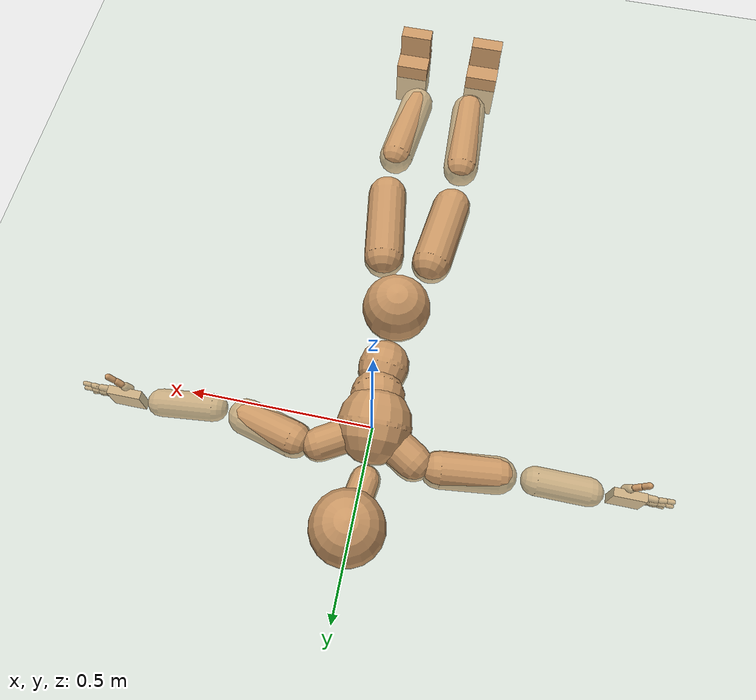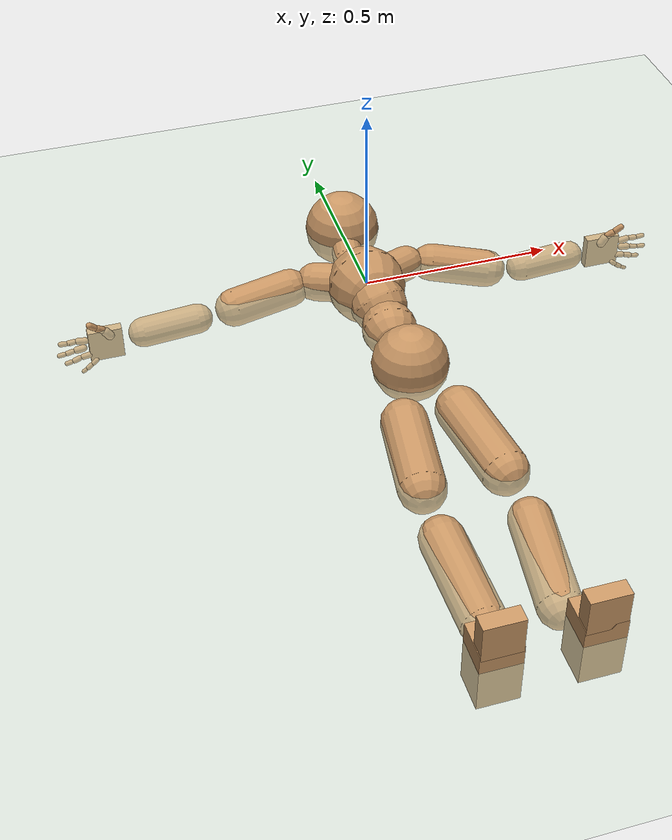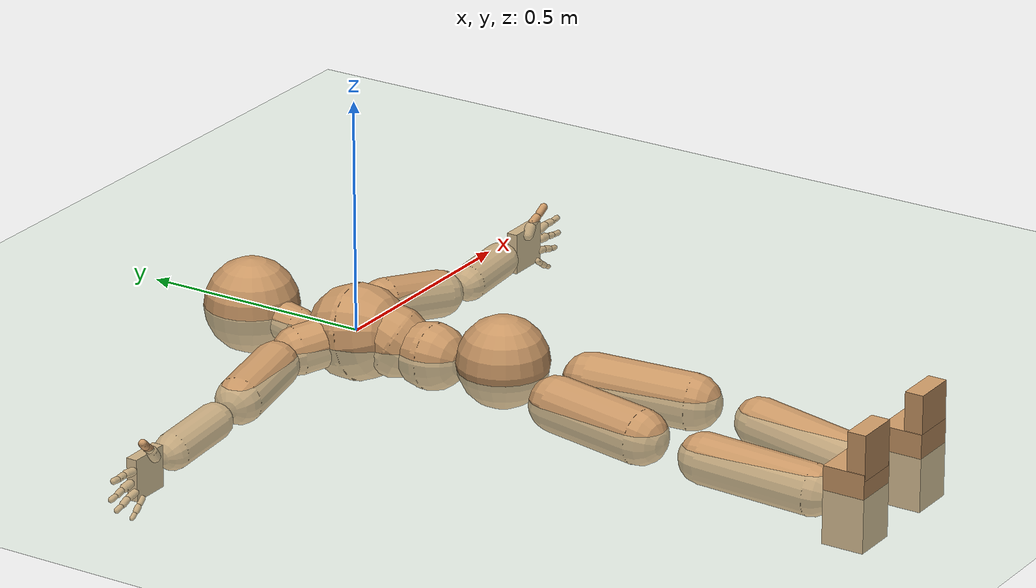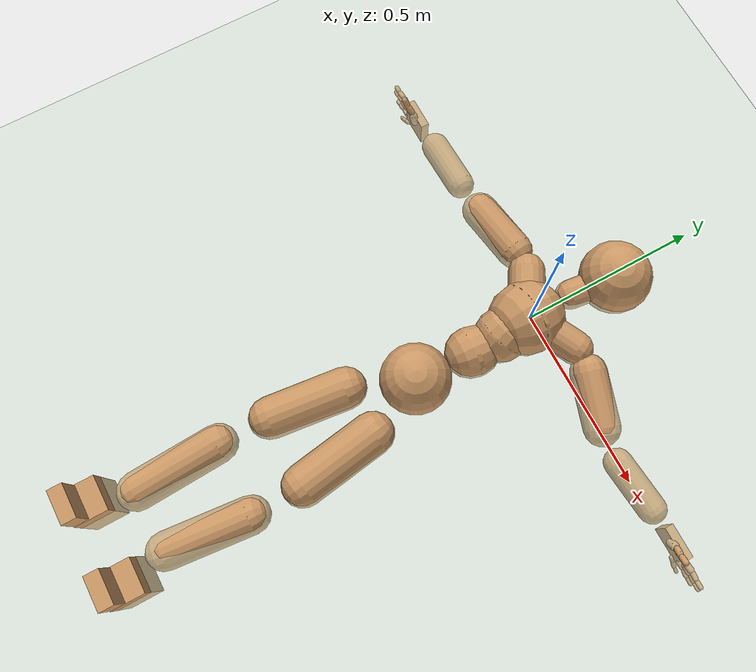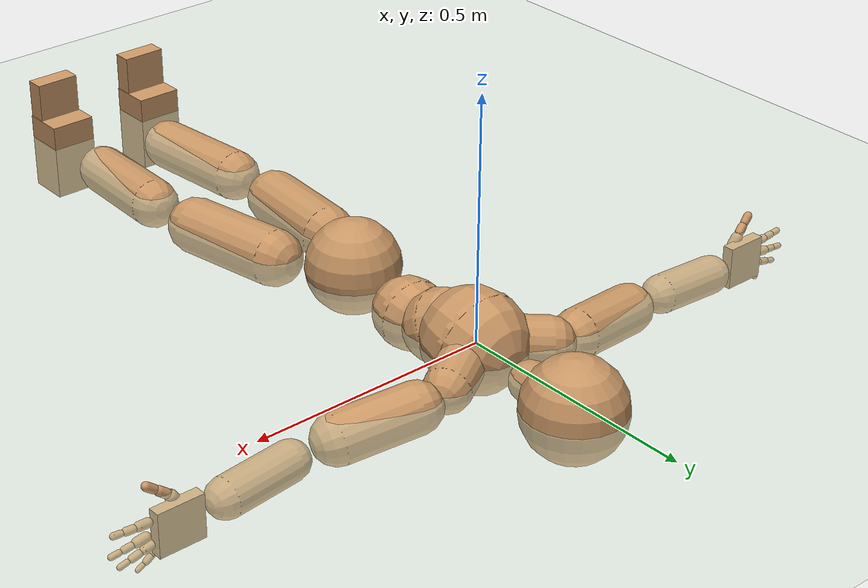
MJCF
<mujoco model="humanoid">
  <compiler coordinate="local"/>
  <default>
    <joint damping="0.0" armature="0.01" stiffness="0.0" limited="true"/>
    <geom conaffinity="1" condim="3" contype="7" margin="0.001" rgba="0.8 0.6 .4 1"/>
  </default>
  <asset>
    <texture type="skybox" builtin="gradient" rgb1=".4 .5 .6" rgb2="0 0 0" width="100" height="100"/>
    <texture builtin="flat" height="1278" mark="cross" markrgb="1 1 1" name="texgeom" random="0.01" rgb1="0.8 0.6 0.4" rgb2="0.8 0.6 0.4" type="cube" width="127"/>
    <texture builtin="checker" height="100" name="texplane" rgb1="0 0 0" rgb2="0.8 0.8 0.8" type="2d" width="100"/>
    <material name="MatPlane" reflectance="0.5" shininess="1" specular="1" texrepeat="60 60" texture="texplane"/>
    <material name="geom" texture="texgeom" texuniform="true"/>
  </asset>
  <worldbody>
    <light cutoff="100" diffuse="1 1 1" dir="-0 0 -1.3" directional="true" exponent="1" pos="0 0 1.3" specular=".1 .1 .1"/>
    <geom conaffinity="1" condim="3" name="floor" pos="0 0 0" rgba="0.8 0.9 0.8 1" size="100 100 .2" type="plane" material="MatPlane"/>
    <body name="Pelvis" pos="0.0031 -0.3543 0.0121">
      <freejoint name="Pelvis"/>
      <geom type="sphere" contype="1" conaffinity="1" density="4629.6296296296305" size="0.0968" pos="0.0000 0.0000 0.0000" name="Pelvis"/>
      <body name="L_Hip" pos="0.0581 -0.092 -0.0259">
        <joint name="L_Hip_x" type="hinge" pos="0 0 0" axis="1 0 0" user="250 2.5 1 500 10 2" armature="0.01" range="-90.0000 90.0000" damping="0" stiffness="0"/>
        <joint name="L_Hip_y" type="hinge" pos="0 0 0" axis="0 1 0" user="250 2.5 1 500 10 2" armature="0.01" range="-90.0000 90.0000" damping="0" stiffness="0"/>
        <joint name="L_Hip_z" type="hinge" pos="0 0 0" axis="0 0 1" user="250 2.5 1 500 10 2" armature="0.01" range="-90.0000 90.0000" damping="0" stiffness="0"/>
        <geom type="capsule" contype="1" conaffinity="1" density="2040.816327" fromto="0.0109 -0.0736 -0.0023 0.0434 -0.2945 -0.0091" size="0.059" name="L_Hip"/>
        <body name="L_Knee" pos="0.0543 -0.3681 -0.0114">
          <joint name="L_Knee_x" type="hinge" pos="0 0 0" axis="1 0 0" user="250 2.5 1 500 10 2" armature="0.01" range="-180.0000 180.0000" damping="0" stiffness="0"/>
          <joint name="L_Knee_y" type="hinge" pos="0 0 0" axis="0 1 0" user="250 2.5 1 500 10 2" armature="0.01" range="-5.6250 5.6250" damping="0" stiffness="0"/>
          <joint name="L_Knee_z" type="hinge" pos="0 0 0" axis="0 0 1" user="250 2.5 1 500 10 2" armature="0.01" range="-5.6250 5.6250" damping="0" stiffness="0"/>
          <geom type="capsule" contype="1" conaffinity="1" density="1234.567901" fromto="-0.0086 -0.0785 -0.0064 -0.0342 -0.3139 -0.0254" size="0.0519" name="L_Knee"/>
          <body name="L_Ankle" pos="-0.0428 -0.3924 -0.0318">
            <joint name="L_Ankle_x" type="hinge" pos="0 0 0" axis="1 0 0" user="150 2.5 1 500 10 2" armature="0.01" range="-90.0000 90.0000" damping="0" stiffness="0"/>
            <joint name="L_Ankle_y" type="hinge" pos="0 0 0" axis="0 1 0" user="150 2.5 1 500 10 2" armature="0.01" range="-90.0000 90.0000" damping="0" stiffness="0"/>
            <joint name="L_Ankle_z" type="hinge" pos="0 0 0" axis="0 0 1" user="150 2.5 1 500 10 2" armature="0.01" range="-90.0000 90.0000" damping="0" stiffness="0"/>
            <geom type="box" density="444.001849" pos="0.0401 -0.0280 0.0231" size="0.0487 0.0454 0.083" quat="1.0000 0.0000 0.0000 0.0000" name="L_Ankle"/>
            <body name="L_Toe" pos="0.0466 -0.0567 0.1152">
              <joint name="L_Toe_x" type="hinge" pos="0 0 0" axis="1 0 0" user="150 1 1 500 1 1" armature="0.01" range="-90.0000 90.0000" damping="0" stiffness="0"/>
              <joint name="L_Toe_y" type="hinge" pos="0 0 0" axis="0 1 0" user="150 1 1 500 1 1" armature="0.01" range="-45.0000 45.0000" damping="0" stiffness="0"/>
              <joint name="L_Toe_z" type="hinge" pos="0 0 0" axis="0 0 1" user="150 1 1 500 1 1" armature="0.01" range="-45.0000 45.0000" damping="0" stiffness="0"/>
              <geom type="box" density="421.181777" pos="-0.0065 0.0033 0.0250" size="0.0469 0.02 0.0483" quat="1.0000 0.0000 0.0000 0.0000" name="L_Toe"/>
            </body>
          </body>
        </body>
      </body>
      <body name="R_Hip" pos="-0.063 -0.1025 -0.0219">
        <joint name="R_Hip_x" type="hinge" pos="0 0 0" axis="1 0 0" user="250 2.5 1 500 10 2" armature="0.01" range="-90.0000 90.0000" damping="0" stiffness="0"/>
        <joint name="R_Hip_y" type="hinge" pos="0 0 0" axis="0 1 0" user="250 2.5 1 500 10 2" armature="0.01" range="-90.0000 90.0000" damping="0" stiffness="0"/>
        <joint name="R_Hip_z" type="hinge" pos="0 0 0" axis="0 0 1" user="250 2.5 1 500 10 2" armature="0.01" range="-90.0000 90.0000" damping="0" stiffness="0"/>
        <geom type="capsule" contype="1" conaffinity="1" density="2040.816327" fromto="-0.0088 -0.0705 -0.0036 -0.0352 -0.2821 -0.0145" size="0.0582" name="R_Hip"/>
        <body name="R_Knee" pos="-0.044 -0.3526 -0.0181">
          <joint name="R_Knee_x" type="hinge" pos="0 0 0" axis="1 0 0" user="250 2.5 1 500 10 2" armature="0.01" range="-180.0000 180.0000" damping="0" stiffness="0"/>
          <joint name="R_Knee_y" type="hinge" pos="0 0 0" axis="0 1 0" user="250 2.5 1 500 10 2" armature="0.01" range="-5.6250 5.6250" damping="0" stiffness="0"/>
          <joint name="R_Knee_z" type="hinge" pos="0 0 0" axis="0 0 1" user="250 2.5 1 500 10 2" armature="0.01" range="-5.6250 5.6250" damping="0" stiffness="0"/>
          <geom type="capsule" contype="1" conaffinity="1" density="1234.567901" fromto="0.0030 -0.0800 -0.0040 0.0122 -0.3198 -0.0161" size="0.0536" name="R_Knee"/>
          <body name="R_Ankle" pos="0.0152 -0.3998 -0.0202">
            <joint name="R_Ankle_x" type="hinge" pos="0 0 0" axis="1 0 0" user="150 1 1 500 10 2" armature="0.01" range="-90.0000 90.0000" damping="0" stiffness="0"/>
            <joint name="R_Ankle_y" type="hinge" pos="0 0 0" axis="0 1 0" user="150 1 1 500 10 2" armature="0.01" range="-90.0000 90.0000" damping="0" stiffness="0"/>
            <joint name="R_Ankle_z" type="hinge" pos="0 0 0" axis="0 0 1" user="150 1 1 500 10 2" armature="0.01" range="-90.0000 90.0000" damping="0" stiffness="0"/>
            <geom type="box" density="443.990292" pos="-0.0240 -0.0256 0.0143" size="0.0487 0.0454 0.083" quat="1.0000 0.0000 0.0000 0.0000" name="R_Ankle"/>
            <body name="R_Toe" pos="-0.0383 -0.0572 0.116">
              <joint name="R_Toe_x" type="hinge" pos="0 0 0" axis="1 0 0" user="150 1 1 500 1 1" armature="0.01" range="-90.0000 90.0000" damping="0" stiffness="0"/>
              <joint name="R_Toe_y" type="hinge" pos="0 0 0" axis="0 1 0" user="150 1 1 500 1 1" armature="0.01" range="-45.0000 45.0000" damping="0" stiffness="0"/>
              <joint name="R_Toe_z" type="hinge" pos="0 0 0" axis="0 0 1" user="150 1 1 500 1 1" armature="0.01" range="-45.0000 45.0000" damping="0" stiffness="0"/>
              <geom type="box" density="421.188207" pos="0.0143 0.0061 0.0154" size="0.0469 0.02 0.0483" quat="1.0000 0.0000 0.0000 0.0000" name="R_Toe"/>
            </body>
          </body>
        </body>
      </body>
      <body name="Torso" pos="-0.0025 0.1078 -0.0263">
        <joint name="Torso_x" type="hinge" pos="0 0 0" axis="1 0 0" user="500 5 1 500 10 2" armature="0.01" range="-60.0000 60.0000" damping="0" stiffness="0"/>
        <joint name="Torso_y" type="hinge" pos="0 0 0" axis="0 1 0" user="500 5 1 500 10 2" armature="0.01" range="-60.0000 60.0000" damping="0" stiffness="0"/>
        <joint name="Torso_z" type="hinge" pos="0 0 0" axis="0 0 1" user="500 5 1 500 10 2" armature="0.01" range="-60.0000 60.0000" damping="0" stiffness="0"/>
        <geom type="capsule" contype="1" conaffinity="1" density="2040.816327" fromto="0.0042 0.0588 -0.0019 0.0051 0.0719 -0.0023" size="0.0704" name="Torso"/>
        <body name="Spine" pos="0.0093 0.1307 -0.0042">
          <joint name="Spine_x" type="hinge" pos="0 0 0" axis="1 0 0" user="500 5 1 500 10 2" armature="0.01" range="-60.0000 60.0000" damping="0" stiffness="0"/>
          <joint name="Spine_y" type="hinge" pos="0 0 0" axis="0 1 0" user="500 5 1 500 10 2" armature="0.01" range="-60.0000 60.0000" damping="0" stiffness="0"/>
          <joint name="Spine_z" type="hinge" pos="0 0 0" axis="0 0 1" user="500 5 1 500 10 2" armature="0.01" range="-60.0000 60.0000" damping="0" stiffness="0"/>
          <geom type="capsule" contype="1" conaffinity="1" density="2040.816327" fromto="-0.0052 0.0226 0.0136 -0.0064 0.0276 0.0166" size="0.0745" name="Spine"/>
          <body name="Chest" pos="-0.0116 0.0502 0.0302">
            <joint name="Chest_x" type="hinge" pos="0 0 0" axis="1 0 0" user="500 5 1 500 10 2" armature="0.01" range="-60.0000 60.0000" damping="0" stiffness="0"/>
            <joint name="Chest_y" type="hinge" pos="0 0 0" axis="0 1 0" user="500 5 1 500 10 2" armature="0.01" range="-60.0000 60.0000" damping="0" stiffness="0"/>
            <joint name="Chest_z" type="hinge" pos="0 0 0" axis="0 0 1" user="500 5 1 500 10 2" armature="0.01" range="-60.0000 60.0000" damping="0" stiffness="0"/>
            <geom type="capsule" contype="1" conaffinity="1" density="2040.816327" fromto="-0.0019 0.0511 -0.0098 -0.0023 0.0624 -0.0119" size="0.1012" name="Chest"/>
            <body name="Neck" pos="-0.0115 0.1689 -0.0373">
              <joint name="Neck_x" type="hinge" pos="0 0 0" axis="1 0 0" user="150 1 1 250 50 4" armature="0.01" range="-180.0000 180.0000" damping="0" stiffness="0"/>
              <joint name="Neck_y" type="hinge" pos="0 0 0" axis="0 1 0" user="150 1 1 250 50 4" armature="0.01" range="-180.0000 180.0000" damping="0" stiffness="0"/>
              <joint name="Neck_z" type="hinge" pos="0 0 0" axis="0 0 1" user="150 1 1 250 50 4" armature="0.01" range="-180.0000 180.0000" damping="0" stiffness="0"/>
              <geom type="capsule" contype="1" conaffinity="1" density="1000" fromto="0.0048 0.0326 0.0039 0.0192 0.1306 0.0157" size="0.0412" name="Neck"/>
              <body name="Head" pos="0.024 0.1632 0.0197">
                <joint name="Head_x" type="hinge" pos="0 0 0" axis="1 0 0" user="150 1 1 250 50 4" armature="0.01" range="-90.0000 90.0000" damping="0" stiffness="0"/>
                <joint name="Head_y" type="hinge" pos="0 0 0" axis="0 1 0" user="150 1 1 250 50 4" armature="0.01" range="-90.0000 90.0000" damping="0" stiffness="0"/>
                <joint name="Head_z" type="hinge" pos="0 0 0" axis="0 0 1" user="150 1 1 250 50 4" armature="0.01" range="-90.0000 90.0000" damping="0" stiffness="0"/>
                <geom type="sphere" contype="1" conaffinity="1" density="1000" size="0.1009" pos="0.0000 0.0000 0.0000" name="Head"/>
              </body>
            </body>
            <body name="L_Thorax" pos="0.0447 0.0861 -0.0108">
              <joint name="L_Thorax_x" type="hinge" pos="0 0 0" axis="1 0 0" user="200 2 1 500 50 4" armature="0.01" range="-180.0000 180.0000" damping="0" stiffness="0"/>
              <joint name="L_Thorax_y" type="hinge" pos="0 0 0" axis="0 1 0" user="200 2 1 500 50 4" armature="0.01" range="-180.0000 180.0000" damping="0" stiffness="0"/>
              <joint name="L_Thorax_z" type="hinge" pos="0 0 0" axis="0 0 1" user="200 2 1 500 50 4" armature="0.01" range="-180.0000 180.0000" damping="0" stiffness="0"/>
              <geom type="capsule" contype="1" conaffinity="1" density="1000" fromto="0.0219 0.0120 -0.0033 0.0875 0.0482 -0.0130" size="0.0467" name="L_Thorax"/>
              <body name="L_Shoulder" pos="0.1093 0.0602 -0.0163">
                <joint name="L_Shoulder_x" type="hinge" pos="0 0 0" axis="1 0 0" user="200 2 1 500 50 4" armature="0.01" range="-180.0000 180.0000" damping="0" stiffness="0"/>
                <joint name="L_Shoulder_y" type="hinge" pos="0 0 0" axis="0 1 0" user="200 2 1 500 50 4" armature="0.01" range="-180.0000 180.0000" damping="0" stiffness="0"/>
                <joint name="L_Shoulder_z" type="hinge" pos="0 0 0" axis="0 0 1" user="200 2 1 500 50 4" armature="0.01" range="-180.0000 180.0000" damping="0" stiffness="0"/>
                <geom type="capsule" contype="1" conaffinity="1" density="1000" fromto="0.0487 -0.0140 -0.0078 0.1948 -0.0559 -0.0312" size="0.0503" name="L_Shoulder"/>
                <body name="L_Elbow" pos="0.2435 -0.0698 -0.039">
                  <joint name="L_Elbow_x" type="hinge" pos="0 0 0" axis="1 0 0" user="150 1 1 150 10 2" armature="0.01" range="-720.0000 720.0000" damping="0" stiffness="0"/>
                  <joint name="L_Elbow_y" type="hinge" pos="0 0 0" axis="0 1 0" user="150 1 1 150 10 2" armature="0.01" range="-720.0000 720.0000" damping="0" stiffness="0"/>
                  <joint name="L_Elbow_z" type="hinge" pos="0 0 0" axis="0 0 1" user="150 1 1 150 10 2" armature="0.01" range="-720.0000 720.0000" damping="0" stiffness="0"/>
                  <geom type="capsule" contype="1" conaffinity="1" density="1000" fromto="0.0485 0.0047 -0.0007 0.1941 0.0189 -0.0027" size="0.0388" name="L_Elbow"/>
                  <body name="L_Wrist" pos="0.2427 0.0236 -0.0034">
                    <joint name="L_Wrist_x" type="hinge" pos="0 0 0" axis="1 0 0" user="100 1 1 150 1 1" armature="0.01" range="-180.0000 180.0000" damping="0" stiffness="0"/>
                    <joint name="L_Wrist_y" type="hinge" pos="0 0 0" axis="0 1 0" user="100 1 1 150 1 1" armature="0.01" range="-180.0000 180.0000" damping="0" stiffness="0"/>
                    <joint name="L_Wrist_z" type="hinge" pos="0 0 0" axis="0 0 1" user="100 1 1 150 1 1" armature="0.01" range="-180.0000 180.0000" damping="0" stiffness="0"/>
                    <geom type="box" density="1201.340022" pos="0.0505 -0.0010 -0.0031" size="0.047 0.0118 0.0447" quat="1.0000 0.0000 0.0000 0.0000" name="L_Wrist"/>
                    <body name="L_Index1" pos="0.0987 -0.0084 0.0189">
                      <joint name="L_Index1_x" type="hinge" pos="0 0 0" axis="1 0 0" user="100 10 1 150" armature="0.01" range="-180.0000 180.0000" damping="0" stiffness="0"/>
                      <joint name="L_Index1_y" type="hinge" pos="0 0 0" axis="0 1 0" user="100 10 1 150" armature="0.01" range="-180.0000 180.0000" damping="0" stiffness="0"/>
                      <joint name="L_Index1_z" type="hinge" pos="0 0 0" axis="0 0 1" user="100 10 1 150" armature="0.01" range="-180.0000 180.0000" damping="0" stiffness="0"/>
                      <geom type="capsule" contype="1" conaffinity="1" density="1000" fromto="0.0062 0.0004 0.0006 0.0250 0.0017 0.0023" size="0.0089" name="L_Index1"/>
                      <body name="L_Index2" pos="0.0312 0.0022 0.0028">
                        <joint name="L_Index2_x" type="hinge" pos="0 0 0" axis="1 0 0" user="100 10 1 150" armature="0.01" range="-180.0000 180.0000" damping="0" stiffness="0"/>
                        <joint name="L_Index2_y" type="hinge" pos="0 0 0" axis="0 1 0" user="100 10 1 150" armature="0.01" range="-180.0000 180.0000" damping="0" stiffness="0"/>
                        <joint name="L_Index2_z" type="hinge" pos="0 0 0" axis="0 0 1" user="100 10 1 150" armature="0.01" range="-180.0000 180.0000" damping="0" stiffness="0"/>
                        <geom type="capsule" contype="1" conaffinity="1" density="1000" fromto="0.0044 -0.0005 0.0000 0.0176 -0.0018 0.0000" size="0.0074" name="L_Index2"/>
                        <body name="L_Index3" pos="0.022 -0.0023 0">
                          <joint name="L_Index3_x" type="hinge" pos="0 0 0" axis="1 0 0" user="100 10 1 150" armature="0.01" range="-180.0000 180.0000" damping="0" stiffness="0"/>
                          <joint name="L_Index3_y" type="hinge" pos="0 0 0" axis="0 1 0" user="100 10 1 150" armature="0.01" range="-180.0000 180.0000" damping="0" stiffness="0"/>
                          <joint name="L_Index3_z" type="hinge" pos="0 0 0" axis="0 0 1" user="100 10 1 150" armature="0.01" range="-180.0000 180.0000" damping="0" stiffness="0"/>
                          <geom type="capsule" contype="1" conaffinity="1" density="1000" fromto="0.0048 -0.0001 0.0004 0.0192 -0.0002 0.0016" size="0.0063" name="L_Index3"/>
                        </body>
                      </body>
                    </body>
                    <body name="L_Middle1" pos="0.1059 -0.0061 -0.0039">
                      <joint name="L_Middle1_x" type="hinge" pos="0 0 0" axis="1 0 0" user="100 10 1 150" armature="0.01" range="-180.0000 180.0000" damping="0" stiffness="0"/>
                      <joint name="L_Middle1_y" type="hinge" pos="0 0 0" axis="0 1 0" user="100 10 1 150" armature="0.01" range="-180.0000 180.0000" damping="0" stiffness="0"/>
                      <joint name="L_Middle1_z" type="hinge" pos="0 0 0" axis="0 0 1" user="100 10 1 150" armature="0.01" range="-180.0000 180.0000" damping="0" stiffness="0"/>
                      <geom type="capsule" contype="1" conaffinity="1" density="1000" fromto="0.0060 0.0002 -0.0008 0.0239 0.0006 -0.0032" size="0.0092" name="L_Middle1"/>
                      <body name="L_Middle2" pos="0.0299 0.0008 -0.0041">
                        <joint name="L_Middle2_x" type="hinge" pos="0 0 0" axis="1 0 0" user="100 10 1 150" armature="0.01" range="-180.0000 180.0000" damping="0" stiffness="0"/>
                        <joint name="L_Middle2_y" type="hinge" pos="0 0 0" axis="0 1 0" user="100 10 1 150" armature="0.01" range="-180.0000 180.0000" damping="0" stiffness="0"/>
                        <joint name="L_Middle2_z" type="hinge" pos="0 0 0" axis="0 0 1" user="100 10 1 150" armature="0.01" range="-180.0000 180.0000" damping="0" stiffness="0"/>
                        <geom type="capsule" contype="1" conaffinity="1" density="1000" fromto="0.0046 -0.0004 -0.0008 0.0184 -0.0015 -0.0033" size="0.0068" name="L_Middle2"/>
                        <body name="L_Middle3" pos="0.023 -0.0019 -0.0041">
                          <joint name="L_Middle3_x" type="hinge" pos="0 0 0" axis="1 0 0" user="100 10 1 150" armature="0.01" range="-180.0000 180.0000" damping="0" stiffness="0"/>
                          <joint name="L_Middle3_y" type="hinge" pos="0 0 0" axis="0 1 0" user="100 10 1 150" armature="0.01" range="-180.0000 180.0000" damping="0" stiffness="0"/>
                          <joint name="L_Middle3_z" type="hinge" pos="0 0 0" axis="0 0 1" user="100 10 1 150" armature="0.01" range="-180.0000 180.0000" damping="0" stiffness="0"/>
                          <geom type="capsule" contype="1" conaffinity="1" density="1000" fromto="0.0050 0.0000 -0.0004 0.0200 0.0001 -0.0017" size="0.0059" name="L_Middle3"/>
                        </body>
                      </body>
                    </body>
                    <body name="L_Pinky1" pos="0.0812 -0.0143 -0.0425">
                      <joint name="L_Pinky1_x" type="hinge" pos="0 0 0" axis="1 0 0" user="100 10 1 150" armature="0.01" range="-180.0000 180.0000" damping="0" stiffness="0"/>
                      <joint name="L_Pinky1_y" type="hinge" pos="0 0 0" axis="0 1 0" user="100 10 1 150" armature="0.01" range="-180.0000 180.0000" damping="0" stiffness="0"/>
                      <joint name="L_Pinky1_z" type="hinge" pos="0 0 0" axis="0 0 1" user="100 10 1 150" armature="0.01" range="-180.0000 180.0000" damping="0" stiffness="0"/>
                      <geom type="capsule" contype="1" conaffinity="1" density="1000" fromto="0.0030 -0.0002 -0.0023 0.0120 -0.0008 -0.0093" size="0.0065" name="L_Pinky1"/>
                      <body name="L_Pinky2" pos="0.015 -0.001 -0.0116">
                        <joint name="L_Pinky2_x" type="hinge" pos="0 0 0" axis="1 0 0" user="100 10 1 150" armature="0.01" range="-180.0000 180.0000" damping="0" stiffness="0"/>
                        <joint name="L_Pinky2_y" type="hinge" pos="0 0 0" axis="0 1 0" user="100 10 1 150" armature="0.01" range="-180.0000 180.0000" damping="0" stiffness="0"/>
                        <joint name="L_Pinky2_z" type="hinge" pos="0 0 0" axis="0 0 1" user="100 10 1 150" armature="0.01" range="-180.0000 180.0000" damping="0" stiffness="0"/>
                        <geom type="capsule" contype="1" conaffinity="1" density="1000" fromto="0.0030 -0.0003 -0.0022 0.0121 -0.0012 -0.0088" size="0.0064" name="L_Pinky2"/>
                        <body name="L_Pinky3" pos="0.0151 -0.0016 -0.0109">
                          <joint name="L_Pinky3_x" type="hinge" pos="0 0 0" axis="1 0 0" user="100 10 1 150" armature="0.01" range="-180.0000 180.0000" damping="0" stiffness="0"/>
                          <joint name="L_Pinky3_y" type="hinge" pos="0 0 0" axis="0 1 0" user="100 10 1 150" armature="0.01" range="-180.0000 180.0000" damping="0" stiffness="0"/>
                          <joint name="L_Pinky3_z" type="hinge" pos="0 0 0" axis="0 0 1" user="100 10 1 150" armature="0.01" range="-180.0000 180.0000" damping="0" stiffness="0"/>
                          <geom type="capsule" contype="1" conaffinity="1" density="1000" fromto="0.0034 0.0001 -0.0018 0.0137 0.0004 -0.0072" size="0.0048" name="L_Pinky3"/>
                        </body>
                      </body>
                    </body>
                    <body name="L_Ring1" pos="0.0942 -0.009 -0.0266">
                      <joint name="L_Ring1_x" type="hinge" pos="0 0 0" axis="1 0 0" user="100 10 1 150" armature="0.01" range="-180.0000 180.0000" damping="0" stiffness="0"/>
                      <joint name="L_Ring1_y" type="hinge" pos="0 0 0" axis="0 1 0" user="100 10 1 150" armature="0.01" range="-180.0000 180.0000" damping="0" stiffness="0"/>
                      <joint name="L_Ring1_z" type="hinge" pos="0 0 0" axis="0 0 1" user="100 10 1 150" armature="0.01" range="-180.0000 180.0000" damping="0" stiffness="0"/>
                      <geom type="capsule" contype="1" conaffinity="1" density="1000" fromto="0.0055 0.0003 -0.0010 0.0219 0.0012 -0.0041" size="0.0078" name="L_Ring1"/>
                      <body name="L_Ring2" pos="0.0273 0.0015 -0.0051">
                        <joint name="L_Ring2_x" type="hinge" pos="0 0 0" axis="1 0 0" user="100 10 1 150" armature="0.01" range="-180.0000 180.0000" damping="0" stiffness="0"/>
                        <joint name="L_Ring2_y" type="hinge" pos="0 0 0" axis="0 1 0" user="100 10 1 150" armature="0.01" range="-180.0000 180.0000" damping="0" stiffness="0"/>
                        <joint name="L_Ring2_z" type="hinge" pos="0 0 0" axis="0 0 1" user="100 10 1 150" armature="0.01" range="-180.0000 180.0000" damping="0" stiffness="0"/>
                        <geom type="capsule" contype="1" conaffinity="1" density="1000" fromto="0.0045 -0.0003 -0.0014 0.0178 -0.0011 -0.0056" size="0.0073" name="L_Ring2"/>
                        <body name="L_Ring3" pos="0.0223 -0.0014 -0.007">
                          <joint name="L_Ring3_x" type="hinge" pos="0 0 0" axis="1 0 0" user="100 10 1 150" armature="0.01" range="-180.0000 180.0000" damping="0" stiffness="0"/>
                          <joint name="L_Ring3_y" type="hinge" pos="0 0 0" axis="0 1 0" user="100 10 1 150" armature="0.01" range="-180.0000 180.0000" damping="0" stiffness="0"/>
                          <joint name="L_Ring3_z" type="hinge" pos="0 0 0" axis="0 0 1" user="100 10 1 150" armature="0.01" range="-180.0000 180.0000" damping="0" stiffness="0"/>
                          <geom type="capsule" contype="1" conaffinity="1" density="1000" fromto="0.0049 0.0001 -0.0010 0.0194 0.0005 -0.0040" size="0.0056" name="L_Ring3"/>
                        </body>
                      </body>
                    </body>
                    <body name="L_Thumb1" pos="0.039 -0.0172 0.025">
                      <joint name="L_Thumb1_x" type="hinge" pos="0 0 0" axis="1 0 0" user="100 10 1 150" armature="0.01" range="-180.0000 180.0000" damping="0" stiffness="0"/>
                      <joint name="L_Thumb1_y" type="hinge" pos="0 0 0" axis="0 1 0" user="100 10 1 150" armature="0.01" range="-180.0000 180.0000" damping="0" stiffness="0"/>
                      <joint name="L_Thumb1_z" type="hinge" pos="0 0 0" axis="0 0 1" user="100 10 1 150" armature="0.01" range="-180.0000 180.0000" damping="0" stiffness="0"/>
                      <geom type="capsule" contype="1" conaffinity="1" density="1000" fromto="0.0033 0.0002 0.0048 0.0133 0.0007 0.0193" size="0.0117" name="L_Thumb1"/>
                      <body name="L_Thumb2" pos="0.0166 0.0009 0.0241">
                        <joint name="L_Thumb2_x" type="hinge" pos="0 0 0" axis="1 0 0" user="100 10 1 150" armature="0.01" range="-180.0000 180.0000" damping="0" stiffness="0"/>
                        <joint name="L_Thumb2_y" type="hinge" pos="0 0 0" axis="0 1 0" user="100 10 1 150" armature="0.01" range="-180.0000 180.0000" damping="0" stiffness="0"/>
                        <joint name="L_Thumb2_z" type="hinge" pos="0 0 0" axis="0 0 1" user="100 10 1 150" armature="0.01" range="-180.0000 180.0000" damping="0" stiffness="0"/>
                        <geom type="capsule" contype="1" conaffinity="1" density="1000" fromto="0.0040 -0.0010 0.0030 0.0162 -0.0040 0.0120" size="0.0092" name="L_Thumb2"/>
                        <body name="L_Thumb3" pos="0.0202 -0.005 0.015">
                          <joint name="L_Thumb3_x" type="hinge" pos="0 0 0" axis="1 0 0" user="100 10 1 150" armature="0.01" range="-180.0000 180.0000" damping="0" stiffness="0"/>
                          <joint name="L_Thumb3_y" type="hinge" pos="0 0 0" axis="0 1 0" user="100 10 1 150" armature="0.01" range="-180.0000 180.0000" damping="0" stiffness="0"/>
                          <joint name="L_Thumb3_z" type="hinge" pos="0 0 0" axis="0 0 1" user="100 10 1 150" armature="0.01" range="-180.0000 180.0000" damping="0" stiffness="0"/>
                          <geom type="capsule" contype="1" conaffinity="1" density="1000" fromto="0.0044 -0.0006 0.0034 0.0178 -0.0024 0.0136" size="0.0085" name="L_Thumb3"/>
                        </body>
                      </body>
                    </body>
                  </body>
                </body>
              </body>
            </body>
            <body name="R_Thorax" pos="-0.0455 0.0856 -0.017">
              <joint name="R_Thorax_x" type="hinge" pos="0 0 0" axis="1 0 0" user="200 2 1 150 10 2" armature="0.01" range="-180.0000 180.0000" damping="0" stiffness="0"/>
              <joint name="R_Thorax_y" type="hinge" pos="0 0 0" axis="0 1 0" user="200 2 1 150 10 2" armature="0.01" range="-180.0000 180.0000" damping="0" stiffness="0"/>
              <joint name="R_Thorax_z" type="hinge" pos="0 0 0" axis="0 0 1" user="200 2 1 150 10 2" armature="0.01" range="-180.0000 180.0000" damping="0" stiffness="0"/>
              <geom type="capsule" contype="1" conaffinity="1" density="1000" fromto="-0.0187 0.0111 -0.0026 -0.0749 0.0443 -0.0105" size="0.0515" name="R_Thorax"/>
              <body name="R_Shoulder" pos="-0.0936 0.0554 -0.0132">
                <joint name="R_Shoulder_x" type="hinge" pos="0 0 0" axis="1 0 0" user="200 2 1 250 10 2" armature="0.01" range="-180.0000 180.0000" damping="0" stiffness="0"/>
                <joint name="R_Shoulder_y" type="hinge" pos="0 0 0" axis="0 1 0" user="200 2 1 250 10 2" armature="0.01" range="-180.0000 180.0000" damping="0" stiffness="0"/>
                <joint name="R_Shoulder_z" type="hinge" pos="0 0 0" axis="0 0 1" user="200 2 1 250 10 2" armature="0.01" range="-180.0000 180.0000" damping="0" stiffness="0"/>
                <geom type="capsule" contype="1" conaffinity="1" density="1000" fromto="-0.0519 -0.0069 -0.0047 -0.2074 -0.0274 -0.0190" size="0.0503" name="R_Shoulder"/>
                <body name="R_Elbow" pos="-0.2593 -0.0343 -0.0237">
                  <joint name="R_Elbow_x" type="hinge" pos="0 0 0" axis="1 0 0" user="150 1 1 150 10 2" armature="0.01" range="-720.0000 720.0000" damping="0" stiffness="0"/>
                  <joint name="R_Elbow_y" type="hinge" pos="0 0 0" axis="0 1 0" user="150 1 1 150 10 2" armature="0.01" range="-720.0000 720.0000" damping="0" stiffness="0"/>
                  <joint name="R_Elbow_z" type="hinge" pos="0 0 0" axis="0 0 1" user="150 1 1 150 10 2" armature="0.01" range="-720.0000 720.0000" damping="0" stiffness="0"/>
                  <geom type="capsule" contype="1" conaffinity="1" density="1000" fromto="-0.0481 -0.0007 -0.0031 -0.1923 -0.0028 -0.0126" size="0.039" name="R_Elbow"/>
                  <body name="R_Wrist" pos="-0.2403 -0.0035 -0.0157">
                    <joint name="R_Wrist_x" type="hinge" pos="0 0 0" axis="1 0 0" user="100 1 1 150 1 1" armature="0.01" range="-180.0000 180.0000" damping="0" stiffness="0"/>
                    <joint name="R_Wrist_y" type="hinge" pos="0 0 0" axis="0 1 0" user="100 1 1 150 1 1" armature="0.01" range="-180.0000 180.0000" damping="0" stiffness="0"/>
                    <joint name="R_Wrist_z" type="hinge" pos="0 0 0" axis="0 0 1" user="100 1 1 150 1 1" armature="0.01" range="-180.0000 180.0000" damping="0" stiffness="0"/>
                    <geom type="box" density="1237.588847" pos="-0.0520 -0.0041 -0.0030" size="0.044 0.0118 0.0447" quat="1.0000 0.0000 0.0000 0.0000" name="R_Wrist"/>
                    <body name="R_Index1" pos="-0.0967 -0.0115 0.019">
                      <joint name="R_Index1_x" type="hinge" pos="0 0 0" axis="1 0 0" user="100 10 1 150" armature="0.01" range="-180.0000 180.0000" damping="0" stiffness="0"/>
                      <joint name="R_Index1_y" type="hinge" pos="0 0 0" axis="0 1 0" user="100 10 1 150" armature="0.01" range="-180.0000 180.0000" damping="0" stiffness="0"/>
                      <joint name="R_Index1_z" type="hinge" pos="0 0 0" axis="0 0 1" user="100 10 1 150" armature="0.01" range="-180.0000 180.0000" damping="0" stiffness="0"/>
                      <geom type="capsule" contype="1" conaffinity="1" density="1000" fromto="-0.0062 0.0004 0.0006 -0.0250 0.0017 0.0023" size="0.0089" name="R_Index1"/>
                      <body name="R_Index2" pos="-0.0312 0.0022 0.0028">
                        <joint name="R_Index2_x" type="hinge" pos="0 0 0" axis="1 0 0" user="100 10 1 150" armature="0.01" range="-180.0000 180.0000" damping="0" stiffness="0"/>
                        <joint name="R_Index2_y" type="hinge" pos="0 0 0" axis="0 1 0" user="100 10 1 150" armature="0.01" range="-180.0000 180.0000" damping="0" stiffness="0"/>
                        <joint name="R_Index2_z" type="hinge" pos="0 0 0" axis="0 0 1" user="100 10 1 150" armature="0.01" range="-180.0000 180.0000" damping="0" stiffness="0"/>
                        <geom type="capsule" contype="1" conaffinity="1" density="1000" fromto="-0.0044 -0.0005 0.0000 -0.0176 -0.0018 0.0000" size="0.0074" name="R_Index2"/>
                        <body name="R_Index3" pos="-0.022 -0.0023 0">
                          <joint name="R_Index3_x" type="hinge" pos="0 0 0" axis="1 0 0" user="100 10 1 150" armature="0.01" range="-180.0000 180.0000" damping="0" stiffness="0"/>
                          <joint name="R_Index3_y" type="hinge" pos="0 0 0" axis="0 1 0" user="100 10 1 150" armature="0.01" range="-180.0000 180.0000" damping="0" stiffness="0"/>
                          <joint name="R_Index3_z" type="hinge" pos="0 0 0" axis="0 0 1" user="100 10 1 150" armature="0.01" range="-180.0000 180.0000" damping="0" stiffness="0"/>
                          <geom type="capsule" contype="1" conaffinity="1" density="1000" fromto="-0.0040 -0.0001 0.0004 -0.0160 -0.0002 0.0016" size="0.0066" name="R_Index3"/>
                        </body>
                      </body>
                    </body>
                    <body name="R_Middle1" pos="-0.1039 -0.0092 -0.0038">
                      <joint name="R_Middle1_x" type="hinge" pos="0 0 0" axis="1 0 0" user="100 10 1 150" armature="0.01" range="-180.0000 180.0000" damping="0" stiffness="0"/>
                      <joint name="R_Middle1_y" type="hinge" pos="0 0 0" axis="0 1 0" user="100 10 1 150" armature="0.01" range="-180.0000 180.0000" damping="0" stiffness="0"/>
                      <joint name="R_Middle1_z" type="hinge" pos="0 0 0" axis="0 0 1" user="100 10 1 150" armature="0.01" range="-180.0000 180.0000" damping="0" stiffness="0"/>
                      <geom type="capsule" contype="1" conaffinity="1" density="1000" fromto="-0.0060 0.0002 -0.0008 -0.0239 0.0006 -0.0032" size="0.0092" name="R_Middle1"/>
                      <body name="R_Middle2" pos="-0.0299 0.0008 -0.0041">
                        <joint name="R_Middle2_x" type="hinge" pos="0 0 0" axis="1 0 0" user="100 10 1 150" armature="0.01" range="-180.0000 180.0000" damping="0" stiffness="0"/>
                        <joint name="R_Middle2_y" type="hinge" pos="0 0 0" axis="0 1 0" user="100 10 1 150" armature="0.01" range="-180.0000 180.0000" damping="0" stiffness="0"/>
                        <joint name="R_Middle2_z" type="hinge" pos="0 0 0" axis="0 0 1" user="100 10 1 150" armature="0.01" range="-180.0000 180.0000" damping="0" stiffness="0"/>
                        <geom type="capsule" contype="1" conaffinity="1" density="1000" fromto="-0.0046 -0.0004 -0.0008 -0.0184 -0.0015 -0.0033" size="0.0068" name="R_Middle2"/>
                        <body name="R_Middle3" pos="-0.023 -0.0019 -0.0041">
                          <joint name="R_Middle3_x" type="hinge" pos="0 0 0" axis="1 0 0" user="100 10 1 150" armature="0.01" range="-180.0000 180.0000" damping="0" stiffness="0"/>
                          <joint name="R_Middle3_y" type="hinge" pos="0 0 0" axis="0 1 0" user="100 10 1 150" armature="0.01" range="-180.0000 180.0000" damping="0" stiffness="0"/>
                          <joint name="R_Middle3_z" type="hinge" pos="0 0 0" axis="0 0 1" user="100 10 1 150" armature="0.01" range="-180.0000 180.0000" damping="0" stiffness="0"/>
                          <geom type="capsule" contype="1" conaffinity="1" density="1000" fromto="-0.0042 0.0000 -0.0004 -0.0168 0.0001 -0.0017" size="0.0062" name="R_Middle3"/>
                        </body>
                      </body>
                    </body>
                    <body name="R_Pinky1" pos="-0.0792 -0.0174 -0.0424">
                      <joint name="R_Pinky1_x" type="hinge" pos="0 0 0" axis="1 0 0" user="100 10 1 150" armature="0.01" range="-180.0000 180.0000" damping="0" stiffness="0"/>
                      <joint name="R_Pinky1_y" type="hinge" pos="0 0 0" axis="0 1 0" user="100 10 1 150" armature="0.01" range="-180.0000 180.0000" damping="0" stiffness="0"/>
                      <joint name="R_Pinky1_z" type="hinge" pos="0 0 0" axis="0 0 1" user="100 10 1 150" armature="0.01" range="-180.0000 180.0000" damping="0" stiffness="0"/>
                      <geom type="capsule" contype="1" conaffinity="1" density="1000" fromto="-0.0030 -0.0002 -0.0023 -0.0120 -0.0008 -0.0093" size="0.0065" name="R_Pinky1"/>
                      <body name="R_Pinky2" pos="-0.015 -0.001 -0.0116">
                        <joint name="R_Pinky2_x" type="hinge" pos="0 0 0" axis="1 0 0" user="100 10 1 150" armature="0.01" range="-180.0000 180.0000" damping="0" stiffness="0"/>
                        <joint name="R_Pinky2_y" type="hinge" pos="0 0 0" axis="0 1 0" user="100 10 1 150" armature="0.01" range="-180.0000 180.0000" damping="0" stiffness="0"/>
                        <joint name="R_Pinky2_z" type="hinge" pos="0 0 0" axis="0 0 1" user="100 10 1 150" armature="0.01" range="-180.0000 180.0000" damping="0" stiffness="0"/>
                        <geom type="capsule" contype="1" conaffinity="1" density="1000" fromto="-0.0030 -0.0003 -0.0022 -0.0121 -0.0012 -0.0088" size="0.0064" name="R_Pinky2"/>
                        <body name="R_Pinky3" pos="-0.0151 -0.0016 -0.0109">
                          <joint name="R_Pinky3_x" type="hinge" pos="0 0 0" axis="1 0 0" user="100 10 1 150" armature="0.01" range="-180.0000 180.0000" damping="0" stiffness="0"/>
                          <joint name="R_Pinky3_y" type="hinge" pos="0 0 0" axis="0 1 0" user="100 10 1 150" armature="0.01" range="-180.0000 180.0000" damping="0" stiffness="0"/>
                          <joint name="R_Pinky3_z" type="hinge" pos="0 0 0" axis="0 0 1" user="100 10 1 150" armature="0.01" range="-180.0000 180.0000" damping="0" stiffness="0"/>
                          <geom type="capsule" contype="1" conaffinity="1" density="1000" fromto="-0.0026 0.0001 -0.0018 -0.0105 0.0004 -0.0072" size="0.0051" name="R_Pinky3"/>
                        </body>
                      </body>
                    </body>
                    <body name="R_Ring1" pos="-0.0922 -0.0121 -0.0265">
                      <joint name="R_Ring1_x" type="hinge" pos="0 0 0" axis="1 0 0" user="100 10 1 150" armature="0.01" range="-180.0000 180.0000" damping="0" stiffness="0"/>
                      <joint name="R_Ring1_y" type="hinge" pos="0 0 0" axis="0 1 0" user="100 10 1 150" armature="0.01" range="-180.0000 180.0000" damping="0" stiffness="0"/>
                      <joint name="R_Ring1_z" type="hinge" pos="0 0 0" axis="0 0 1" user="100 10 1 150" armature="0.01" range="-180.0000 180.0000" damping="0" stiffness="0"/>
                      <geom type="capsule" contype="1" conaffinity="1" density="1000" fromto="-0.0055 0.0003 -0.0010 -0.0219 0.0012 -0.0041" size="0.0078" name="R_Ring1"/>
                      <body name="R_Ring2" pos="-0.0273 0.0015 -0.0051">
                        <joint name="R_Ring2_x" type="hinge" pos="0 0 0" axis="1 0 0" user="100 10 1 150" armature="0.01" range="-180.0000 180.0000" damping="0" stiffness="0"/>
                        <joint name="R_Ring2_y" type="hinge" pos="0 0 0" axis="0 1 0" user="100 10 1 150" armature="0.01" range="-180.0000 180.0000" damping="0" stiffness="0"/>
                        <joint name="R_Ring2_z" type="hinge" pos="0 0 0" axis="0 0 1" user="100 10 1 150" armature="0.01" range="-180.0000 180.0000" damping="0" stiffness="0"/>
                        <geom type="capsule" contype="1" conaffinity="1" density="1000" fromto="-0.0045 -0.0003 -0.0014 -0.0178 -0.0011 -0.0056" size="0.0073" name="R_Ring2"/>
                        <body name="R_Ring3" pos="-0.0223 -0.0014 -0.007">
                          <joint name="R_Ring3_x" type="hinge" pos="0 0 0" axis="1 0 0" user="100 10 1 150" armature="0.01" range="-180.0000 180.0000" damping="0" stiffness="0"/>
                          <joint name="R_Ring3_y" type="hinge" pos="0 0 0" axis="0 1 0" user="100 10 1 150" armature="0.01" range="-180.0000 180.0000" damping="0" stiffness="0"/>
                          <joint name="R_Ring3_z" type="hinge" pos="0 0 0" axis="0 0 1" user="100 10 1 150" armature="0.01" range="-180.0000 180.0000" damping="0" stiffness="0"/>
                          <geom type="capsule" contype="1" conaffinity="1" density="1000" fromto="-0.0041 0.0001 -0.0010 -0.0162 0.0005 -0.0040" size="0.0059" name="R_Ring3"/>
                        </body>
                      </body>
                    </body>
                    <body name="R_Thumb1" pos="-0.037 -0.0203 0.0251">
                      <joint name="R_Thumb1_x" type="hinge" pos="0 0 0" axis="1 0 0" user="100 10 1 150" armature="0.01" range="-180.0000 180.0000" damping="0" stiffness="0"/>
                      <joint name="R_Thumb1_y" type="hinge" pos="0 0 0" axis="0 1 0" user="100 10 1 150" armature="0.01" range="-180.0000 180.0000" damping="0" stiffness="0"/>
                      <joint name="R_Thumb1_z" type="hinge" pos="0 0 0" axis="0 0 1" user="100 10 1 150" armature="0.01" range="-180.0000 180.0000" damping="0" stiffness="0"/>
                      <geom type="capsule" contype="1" conaffinity="1" density="1000" fromto="-0.0033 0.0002 0.0048 -0.0133 0.0007 0.0193" size="0.0117" name="R_Thumb1"/>
                      <body name="R_Thumb2" pos="-0.0166 0.0009 0.0241">
                        <joint name="R_Thumb2_x" type="hinge" pos="0 0 0" axis="1 0 0" user="100 10 1 150" armature="0.01" range="-180.0000 180.0000" damping="0" stiffness="0"/>
                        <joint name="R_Thumb2_y" type="hinge" pos="0 0 0" axis="0 1 0" user="100 10 1 150" armature="0.01" range="-180.0000 180.0000" damping="0" stiffness="0"/>
                        <joint name="R_Thumb2_z" type="hinge" pos="0 0 0" axis="0 0 1" user="100 10 1 150" armature="0.01" range="-180.0000 180.0000" damping="0" stiffness="0"/>
                        <geom type="capsule" contype="1" conaffinity="1" density="1000" fromto="-0.0040 -0.0010 0.0030 -0.0162 -0.0040 0.0120" size="0.0092" name="R_Thumb2"/>
                        <body name="R_Thumb3" pos="-0.0202 -0.005 0.015">
                          <joint name="R_Thumb3_x" type="hinge" pos="0 0 0" axis="1 0 0" user="100 10 1 150" armature="0.01" range="-180.0000 180.0000" damping="0" stiffness="0"/>
                          <joint name="R_Thumb3_y" type="hinge" pos="0 0 0" axis="0 1 0" user="100 10 1 150" armature="0.01" range="-180.0000 180.0000" damping="0" stiffness="0"/>
                          <joint name="R_Thumb3_z" type="hinge" pos="0 0 0" axis="0 0 1" user="100 10 1 150" armature="0.01" range="-180.0000 180.0000" damping="0" stiffness="0"/>
                          <geom type="capsule" contype="1" conaffinity="1" density="1000" fromto="-0.0036 -0.0006 0.0034 -0.0146 -0.0024 0.0136" size="0.0087" name="R_Thumb3"/>
                        </body>
                      </body>
                    </body>
                  </body>
                </body>
              </body>
            </body>
          </body>
        </body>
      </body>
    </body>
  </worldbody>
  <actuator>
    <motor name="L_Hip_x" joint="L_Hip_x" gear="1"/>
    <motor name="L_Hip_y" joint="L_Hip_y" gear="1"/>
    <motor name="L_Hip_z" joint="L_Hip_z" gear="1"/>
    <motor name="L_Knee_x" joint="L_Knee_x" gear="1"/>
    <motor name="L_Knee_y" joint="L_Knee_y" gear="1"/>
    <motor name="L_Knee_z" joint="L_Knee_z" gear="1"/>
    <motor name="L_Ankle_x" joint="L_Ankle_x" gear="1"/>
    <motor name="L_Ankle_y" joint="L_Ankle_y" gear="1"/>
    <motor name="L_Ankle_z" joint="L_Ankle_z" gear="1"/>
    <motor name="L_Toe_x" joint="L_Toe_x" gear="1"/>
    <motor name="L_Toe_y" joint="L_Toe_y" gear="1"/>
    <motor name="L_Toe_z" joint="L_Toe_z" gear="1"/>
    <motor name="R_Hip_x" joint="R_Hip_x" gear="1"/>
    <motor name="R_Hip_y" joint="R_Hip_y" gear="1"/>
    <motor name="R_Hip_z" joint="R_Hip_z" gear="1"/>
    <motor name="R_Knee_x" joint="R_Knee_x" gear="1"/>
    <motor name="R_Knee_y" joint="R_Knee_y" gear="1"/>
    <motor name="R_Knee_z" joint="R_Knee_z" gear="1"/>
    <motor name="R_Ankle_x" joint="R_Ankle_x" gear="1"/>
    <motor name="R_Ankle_y" joint="R_Ankle_y" gear="1"/>
    <motor name="R_Ankle_z" joint="R_Ankle_z" gear="1"/>
    <motor name="R_Toe_x" joint="R_Toe_x" gear="1"/>
    <motor name="R_Toe_y" joint="R_Toe_y" gear="1"/>
    <motor name="R_Toe_z" joint="R_Toe_z" gear="1"/>
    <motor name="Torso_x" joint="Torso_x" gear="1"/>
    <motor name="Torso_y" joint="Torso_y" gear="1"/>
    <motor name="Torso_z" joint="Torso_z" gear="1"/>
    <motor name="Spine_x" joint="Spine_x" gear="1"/>
    <motor name="Spine_y" joint="Spine_y" gear="1"/>
    <motor name="Spine_z" joint="Spine_z" gear="1"/>
    <motor name="Chest_x" joint="Chest_x" gear="1"/>
    <motor name="Chest_y" joint="Chest_y" gear="1"/>
    <motor name="Chest_z" joint="Chest_z" gear="1"/>
    <motor name="Neck_x" joint="Neck_x" gear="1"/>
    <motor name="Neck_y" joint="Neck_y" gear="1"/>
    <motor name="Neck_z" joint="Neck_z" gear="1"/>
    <motor name="Head_x" joint="Head_x" gear="1"/>
    <motor name="Head_y" joint="Head_y" gear="1"/>
    <motor name="Head_z" joint="Head_z" gear="1"/>
    <motor name="L_Thorax_x" joint="L_Thorax_x" gear="1"/>
    <motor name="L_Thorax_y" joint="L_Thorax_y" gear="1"/>
    <motor name="L_Thorax_z" joint="L_Thorax_z" gear="1"/>
    <motor name="L_Shoulder_x" joint="L_Shoulder_x" gear="1"/>
    <motor name="L_Shoulder_y" joint="L_Shoulder_y" gear="1"/>
    <motor name="L_Shoulder_z" joint="L_Shoulder_z" gear="1"/>
    <motor name="L_Elbow_x" joint="L_Elbow_x" gear="1"/>
    <motor name="L_Elbow_y" joint="L_Elbow_y" gear="1"/>
    <motor name="L_Elbow_z" joint="L_Elbow_z" gear="1"/>
    <motor name="L_Wrist_x" joint="L_Wrist_x" gear="1"/>
    <motor name="L_Wrist_y" joint="L_Wrist_y" gear="1"/>
    <motor name="L_Wrist_z" joint="L_Wrist_z" gear="1"/>
    <motor name="L_Index1_x" joint="L_Index1_x" gear="1"/>
    <motor name="L_Index1_y" joint="L_Index1_y" gear="1"/>
    <motor name="L_Index1_z" joint="L_Index1_z" gear="1"/>
    <motor name="L_Index2_x" joint="L_Index2_x" gear="1"/>
    <motor name="L_Index2_y" joint="L_Index2_y" gear="1"/>
    <motor name="L_Index2_z" joint="L_Index2_z" gear="1"/>
    <motor name="L_Index3_x" joint="L_Index3_x" gear="1"/>
    <motor name="L_Index3_y" joint="L_Index3_y" gear="1"/>
    <motor name="L_Index3_z" joint="L_Index3_z" gear="1"/>
    <motor name="L_Middle1_x" joint="L_Middle1_x" gear="1"/>
    <motor name="L_Middle1_y" joint="L_Middle1_y" gear="1"/>
    <motor name="L_Middle1_z" joint="L_Middle1_z" gear="1"/>
    <motor name="L_Middle2_x" joint="L_Middle2_x" gear="1"/>
    <motor name="L_Middle2_y" joint="L_Middle2_y" gear="1"/>
    <motor name="L_Middle2_z" joint="L_Middle2_z" gear="1"/>
    <motor name="L_Middle3_x" joint="L_Middle3_x" gear="1"/>
    <motor name="L_Middle3_y" joint="L_Middle3_y" gear="1"/>
    <motor name="L_Middle3_z" joint="L_Middle3_z" gear="1"/>
    <motor name="L_Pinky1_x" joint="L_Pinky1_x" gear="1"/>
    <motor name="L_Pinky1_y" joint="L_Pinky1_y" gear="1"/>
    <motor name="L_Pinky1_z" joint="L_Pinky1_z" gear="1"/>
    <motor name="L_Pinky2_x" joint="L_Pinky2_x" gear="1"/>
    <motor name="L_Pinky2_y" joint="L_Pinky2_y" gear="1"/>
    <motor name="L_Pinky2_z" joint="L_Pinky2_z" gear="1"/>
    <motor name="L_Pinky3_x" joint="L_Pinky3_x" gear="1"/>
    <motor name="L_Pinky3_y" joint="L_Pinky3_y" gear="1"/>
    <motor name="L_Pinky3_z" joint="L_Pinky3_z" gear="1"/>
    <motor name="L_Ring1_x" joint="L_Ring1_x" gear="1"/>
    <motor name="L_Ring1_y" joint="L_Ring1_y" gear="1"/>
    <motor name="L_Ring1_z" joint="L_Ring1_z" gear="1"/>
    <motor name="L_Ring2_x" joint="L_Ring2_x" gear="1"/>
    <motor name="L_Ring2_y" joint="L_Ring2_y" gear="1"/>
    <motor name="L_Ring2_z" joint="L_Ring2_z" gear="1"/>
    <motor name="L_Ring3_x" joint="L_Ring3_x" gear="1"/>
    <motor name="L_Ring3_y" joint="L_Ring3_y" gear="1"/>
    <motor name="L_Ring3_z" joint="L_Ring3_z" gear="1"/>
    <motor name="L_Thumb1_x" joint="L_Thumb1_x" gear="1"/>
    <motor name="L_Thumb1_y" joint="L_Thumb1_y" gear="1"/>
    <motor name="L_Thumb1_z" joint="L_Thumb1_z" gear="1"/>
    <motor name="L_Thumb2_x" joint="L_Thumb2_x" gear="1"/>
    <motor name="L_Thumb2_y" joint="L_Thumb2_y" gear="1"/>
    <motor name="L_Thumb2_z" joint="L_Thumb2_z" gear="1"/>
    <motor name="L_Thumb3_x" joint="L_Thumb3_x" gear="1"/>
    <motor name="L_Thumb3_y" joint="L_Thumb3_y" gear="1"/>
    <motor name="L_Thumb3_z" joint="L_Thumb3_z" gear="1"/>
    <motor name="R_Thorax_x" joint="R_Thorax_x" gear="1"/>
    <motor name="R_Thorax_y" joint="R_Thorax_y" gear="1"/>
    <motor name="R_Thorax_z" joint="R_Thorax_z" gear="1"/>
    <motor name="R_Shoulder_x" joint="R_Shoulder_x" gear="1"/>
    <motor name="R_Shoulder_y" joint="R_Shoulder_y" gear="1"/>
    <motor name="R_Shoulder_z" joint="R_Shoulder_z" gear="1"/>
    <motor name="R_Elbow_x" joint="R_Elbow_x" gear="1"/>
    <motor name="R_Elbow_y" joint="R_Elbow_y" gear="1"/>
    <motor name="R_Elbow_z" joint="R_Elbow_z" gear="1"/>
    <motor name="R_Wrist_x" joint="R_Wrist_x" gear="1"/>
    <motor name="R_Wrist_y" joint="R_Wrist_y" gear="1"/>
    <motor name="R_Wrist_z" joint="R_Wrist_z" gear="1"/>
    <motor name="R_Index1_x" joint="R_Index1_x" gear="1"/>
    <motor name="R_Index1_y" joint="R_Index1_y" gear="1"/>
    <motor name="R_Index1_z" joint="R_Index1_z" gear="1"/>
    <motor name="R_Index2_x" joint="R_Index2_x" gear="1"/>
    <motor name="R_Index2_y" joint="R_Index2_y" gear="1"/>
    <motor name="R_Index2_z" joint="R_Index2_z" gear="1"/>
    <motor name="R_Index3_x" joint="R_Index3_x" gear="1"/>
    <motor name="R_Index3_y" joint="R_Index3_y" gear="1"/>
    <motor name="R_Index3_z" joint="R_Index3_z" gear="1"/>
    <motor name="R_Middle1_x" joint="R_Middle1_x" gear="1"/>
    <motor name="R_Middle1_y" joint="R_Middle1_y" gear="1"/>
    <motor name="R_Middle1_z" joint="R_Middle1_z" gear="1"/>
    <motor name="R_Middle2_x" joint="R_Middle2_x" gear="1"/>
    <motor name="R_Middle2_y" joint="R_Middle2_y" gear="1"/>
    <motor name="R_Middle2_z" joint="R_Middle2_z" gear="1"/>
    <motor name="R_Middle3_x" joint="R_Middle3_x" gear="1"/>
    <motor name="R_Middle3_y" joint="R_Middle3_y" gear="1"/>
    <motor name="R_Middle3_z" joint="R_Middle3_z" gear="1"/>
    <motor name="R_Pinky1_x" joint="R_Pinky1_x" gear="1"/>
    <motor name="R_Pinky1_y" joint="R_Pinky1_y" gear="1"/>
    <motor name="R_Pinky1_z" joint="R_Pinky1_z" gear="1"/>
    <motor name="R_Pinky2_x" joint="R_Pinky2_x" gear="1"/>
    <motor name="R_Pinky2_y" joint="R_Pinky2_y" gear="1"/>
    <motor name="R_Pinky2_z" joint="R_Pinky2_z" gear="1"/>
    <motor name="R_Pinky3_x" joint="R_Pinky3_x" gear="1"/>
    <motor name="R_Pinky3_y" joint="R_Pinky3_y" gear="1"/>
    <motor name="R_Pinky3_z" joint="R_Pinky3_z" gear="1"/>
    <motor name="R_Ring1_x" joint="R_Ring1_x" gear="1"/>
    <motor name="R_Ring1_y" joint="R_Ring1_y" gear="1"/>
    <motor name="R_Ring1_z" joint="R_Ring1_z" gear="1"/>
    <motor name="R_Ring2_x" joint="R_Ring2_x" gear="1"/>
    <motor name="R_Ring2_y" joint="R_Ring2_y" gear="1"/>
    <motor name="R_Ring2_z" joint="R_Ring2_z" gear="1"/>
    <motor name="R_Ring3_x" joint="R_Ring3_x" gear="1"/>
    <motor name="R_Ring3_y" joint="R_Ring3_y" gear="1"/>
    <motor name="R_Ring3_z" joint="R_Ring3_z" gear="1"/>
    <motor name="R_Thumb1_x" joint="R_Thumb1_x" gear="1"/>
    <motor name="R_Thumb1_y" joint="R_Thumb1_y" gear="1"/>
    <motor name="R_Thumb1_z" joint="R_Thumb1_z" gear="1"/>
    <motor name="R_Thumb2_x" joint="R_Thumb2_x" gear="1"/>
    <motor name="R_Thumb2_y" joint="R_Thumb2_y" gear="1"/>
    <motor name="R_Thumb2_z" joint="R_Thumb2_z" gear="1"/>
    <motor name="R_Thumb3_x" joint="R_Thumb3_x" gear="1"/>
    <motor name="R_Thumb3_y" joint="R_Thumb3_y" gear="1"/>
    <motor name="R_Thumb3_z" joint="R_Thumb3_z" gear="1"/>
  </actuator>
  <contact>
    <exclude body1="Torso" body2="Chest"/>
    <exclude body1="Head" body2="Chest"/>
    <exclude body1="R_Knee" body2="R_Toe"/>
    <exclude body1="R_Knee" body2="L_Ankle"/>
    <exclude body1="R_Knee" body2="L_Toe"/>
    <exclude body1="L_Knee" body2="L_Toe"/>
    <exclude body1="L_Knee" body2="R_Ankle"/>
    <exclude body1="L_Knee" body2="R_Toe"/>
    <exclude body1="L_Shoulder" body2="Chest"/>
    <exclude body1="R_Shoulder" body2="Chest"/>
  </contact>
  <sensor/>
  <size njmax="700" nconmax="700"/>
</mujoco>
